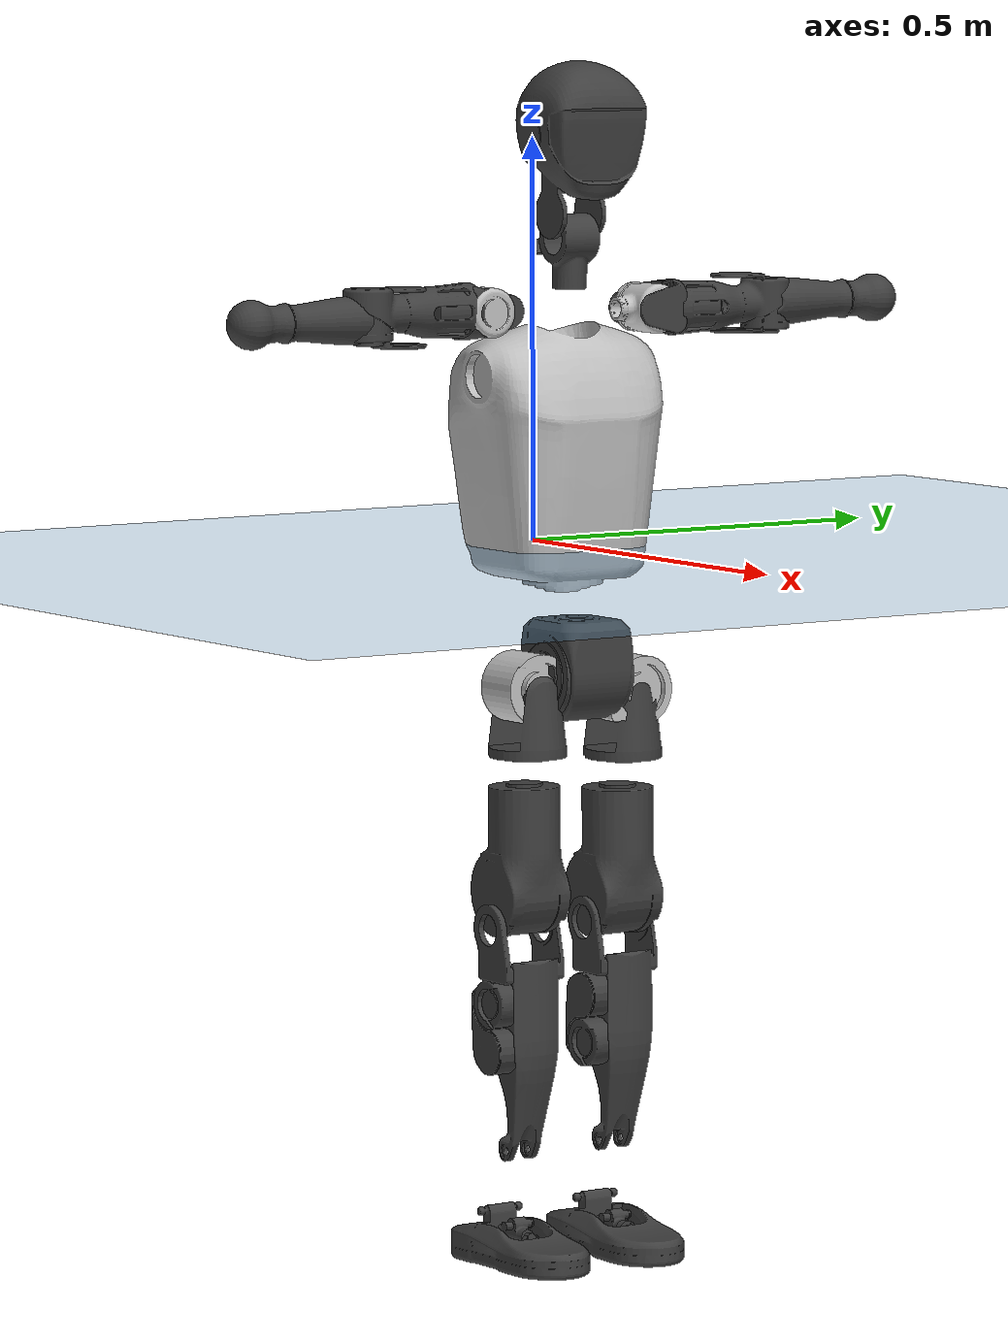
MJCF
<mujoco model="T1">
  <compiler angle="radian" assetdir="assets" balanceinertia="true" inertiafromgeom="false"/>

  <option timestep="0.005" density="1.2" viscosity="2e-05"/>

  <size nkey="1"/>

  <visual>
    <quality shadowsize="8192"/>
    <map shadowclip="0.5"/>
  </visual>

  <default>
    <default class="/">
      <joint armature="0.01" damping="0.01" frictionloss="0.1"/>
      <geom contype="0" conaffinity="0" group="1" solref="-1000 -80"/>
      <site size="0.01 0.005 0.005" group="5"/>
      <general forcelimited="true" biastype="affine" gainprm="25" biasprm="0 -25 -0.6"/>
      <default class="t1">
        <geom rgba="0.25 0.25 0.25 1"/>
        <default class="visual">
          <geom type="mesh" group="2"/>
        </default>
        <default class="collision">
          <geom group="3"/>
        </default>
        <default class="foot">
          <geom size="0.1115 0.05 0.015" type="box" condim="6" group="4" priority="1" solimp="0.015 1 0.015"/>
        </default>
        <default class="reward_collision_sphere">
          <geom group="5" rgba="1 0 0 1"/>
        </default>
      </default>
    </default>
  </default>

  <asset>
    <texture type="skybox" colorspace="auto" name="//unnamed_texture_0" builtin="gradient" rgb1="0.95 0.95 0.95" rgb2="0.95 0.95 0.95" width="100" height="600"/>
    <texture type="2d" colorspace="auto" name="texplane" builtin="checker" rgb1="0.345 0.575 0.748" rgb2="0.345 0.575 0.748" markrgb="1 1 1" width="512" height="512"/>
    <material name="MatPlane" class="/" texture="texplane" texuniform="true" texrepeat="2 2" specular="0.9"/>
    <mesh name="Trunk" class="/" file="Trunk.stl"/>
    <mesh name="H1" class="/" file="H1.stl"/>
    <mesh name="H2" class="/" file="H2.stl"/>
    <mesh name="AL1" class="/" file="AL1.stl"/>
    <mesh name="AL2" class="/" file="AL2.stl"/>
    <mesh name="AL3" class="/" file="AL3.stl"/>
    <mesh name="left_hand_link" class="/" file="left_hand_link.stl"/>
    <mesh name="AR1" class="/" file="AR1.stl"/>
    <mesh name="AR2" class="/" file="AR2.stl"/>
    <mesh name="AR3" class="/" file="AR3.stl"/>
    <mesh name="right_hand_link" class="/" file="right_hand_link.stl"/>
    <mesh name="Waist" class="/" file="Waist.stl"/>
    <mesh name="Hip_Pitch_Left" class="/" file="Hip_Pitch_Left.stl"/>
    <mesh name="Hip_Roll_Left" class="/" file="Hip_Roll_Left.stl"/>
    <mesh name="Hip_Yaw_Left" class="/" file="Hip_Yaw_Left.stl"/>
    <mesh name="Shank_Left" class="/" file="Shank_Left.stl"/>
    <mesh name="Ankle_Cross_Left" class="/" file="Ankle_Cross_Left.stl"/>
    <mesh name="left_foot_link" class="/" file="left_foot_link.stl"/>
    <mesh name="Hip_Pitch_Right" class="/" file="Hip_Pitch_Right.stl"/>
    <mesh name="Hip_Roll_Right" class="/" file="Hip_Roll_Right.stl"/>
    <mesh name="Hip_Yaw_Right" class="/" file="Hip_Yaw_Right.stl"/>
    <mesh name="Shank_Right" class="/" file="Shank_Right.stl"/>
    <mesh name="Ankle_Cross_Right" class="/" file="Ankle_Cross_Right.stl"/>
    <mesh name="right_foot_link" class="/" file="right_foot_link.stl"/>
  </asset>

  <worldbody>
    <geom name="floor" class="/" size="100 100 0.125" type="plane" group="0" material="MatPlane"/>
    <light name="toplight_shadow" class="/" pos="0 0 5" dir="0.0990148 0.0990148 -0.990148" type="directional" ambient="0.04 0.04 0.04" diffuse="0.55 0.55 0.55" specular="0.12 0.12 0.12"/>
    <light name="toplight_fill" class="/" pos="0 0 5" dir="0.0990148 0.0990148 -0.990148" type="directional" castshadow="false" ambient="0.04 0.04 0.04" diffuse="0.3 0.3 0.3" specular="0.08 0.08 0.08"/>
    <body name="trunk" childclass="t1" pos="0.000574524 0.00127898 -0.00512903" quat="1 -2.86865e-06 -1.41386e-06 4.41112e-06">
      <inertial pos="0.0628754 0.00334106 0.14131" quat="0.999939 0.00221591 0.00362804 0.0101466" mass="14.1623" diaginertia="0.227341 0.00991167 0.22771"/>
      <joint name="//unnamed_joint_0" type="free" armature="0" damping="0" frictionloss="0"/>
      <geom name="//unnamed_geom_1" class="visual" rgba="0.76 0.76 0.76 1" mesh="Trunk"/>
      <geom name="//unnamed_geom_2" class="collision" size="0.0797578 0.106344 0.159516" pos="0.0723542 0 0.159039" type="box"/>
      <geom name="//unnamed_geom_3" class="reward_collision_sphere" size="0.122295" pos="0.0723542 0 0.132532"/>
      <geom name="//unnamed_geom_4" class="reward_collision_sphere" size="0.0159516" pos="0.0723542 0.0560221 0"/>
      <geom name="//unnamed_geom_5" class="reward_collision_sphere" size="0.0159516" pos="0.0723542 -0.0560221 0"/>
      <geom name="//unnamed_geom_6" class="reward_collision_sphere" size="0.0159516" pos="0.0723542 0.0705219 0.238558"/>
      <geom name="//unnamed_geom_7" class="reward_collision_sphere" size="0.0159516" pos="0.0723542 -0.0705219 0.238558"/>
      <site name="imu" pos="0.00151432 -0.0335121 0.00556266" size="0.0106344"/>
      <camera name="track" pos="0 -1.31817 0" quat="0.707107 0.707107 0 0" mode="trackcom"/>
      <camera name="ego_camera" pos="0.14712 0 0.556636" quat="-0.5 -0.5 0.5 0.5"/>
      <body name="H1" pos="0.0751356 0.00247079 0.322095" quat="0.999995 -0.00244836 0.00207152 -0.000183056">
        <inertial pos="-0.00291985 -0.00348759 0.0748558" quat="0.763497 -0.0134214 0.00252759 0.645666" mass="0.57966" diaginertia="0.000632902 2.70405e-05 0.000609457"/>
        <joint name="AAHead_yaw" pos="0 0 0" axis="-0.00123172 -0.000864738 0.999999" range="-1.59281 1.40117" armature="0.00963623" damping="0.0277055" frictionloss="0.125427"/>
        <geom name="//unnamed_geom_8" class="visual" mesh="H1"/>
        <body name="H2" pos="-0.000397439 0.00171347 0.0918979" quat="0.999989 -0.000821836 0.00407801 0.00234672">
          <inertial pos="0.010461 -0.00344356 0.125653" quat="0.989287 0.0929569 -0.0691125 -0.0888471" mass="0.755233" diaginertia="0.00512441 0.000227749 0.00734276"/>
          <joint name="Head_pitch" pos="0 0 0" axis="-0.0235291 -0.999695 0.00750383" stiffness="0.0163849" range="-1.20358 0.380426" armature="0.0116126" damping="0.00372477" frictionloss="0.115399"/>
          <geom name="//unnamed_geom_9" class="visual" mesh="H2"/>
          <geom name="//unnamed_geom_10" class="collision" size="0.085075" pos="0.012059 0 0.145786"/>
          <geom name="//unnamed_geom_11" class="reward_collision_sphere" size="0.0957093" pos="0.0241181 0 0.132532"/>
        </body>
      </body>
      <body name="AL1" pos="0.0741164 0.0718595 0.29423" quat="0.999999 -0.000446265 0.00088457 -0.000947983">
        <inertial pos="-0.00101149 0.0325408 0.000363601" quat="0.509605 0.479827 -0.531004 0.477602" mass="0.693209" diaginertia="0.00378368 0.000171894 0.00123759"/>
        <joint name="Left_Shoulder_Pitch" pos="0 0 0" axis="-0.0123029 0.999913 -0.00479779" stiffness="0.0122248" range="-3.46653 1.22886" armature="0.0130958" damping="0.020417" frictionloss="0.115303"/>
        <geom name="//unnamed_geom_12" class="visual" rgba="0.76 0.76 0.76 1" mesh="AL1"/>
        <body name="AL2" pos="0.00443428 0.0316554 -0.000363577" quat="0.999993 0.00237509 -0.00255502 0.00104293">
          <inertial pos="-0.00423619 0.0224075 5.50506e-05" quat="0.4819 0.512633 -0.482389 0.521806" mass="0.204631" diaginertia="0.00109187 4.55552e-05 0.000799765"/>
          <joint name="Left_Shoulder_Roll" pos="0 0 0" axis="-0.999862 -0.00663577 -0.015251" range="-1.55984 1.71847" armature="0.00869289" damping="0" frictionloss="0.0966583"/>
          <geom name="//unnamed_geom_13" class="visual" mesh="AL2"/>
          <body name="AL3" pos="0.00426684 0.0411772 -0.000331788" quat="0.999994 -0.00288142 6.45202e-05 0.00179611">
            <inertial pos="-0.00789216 0.0574932 -0.00228552" quat="0.710505 0.702188 -0.00931174 -0.0450394" mass="1.08546" diaginertia="0.0289664 0.00123829 0.00230384"/>
            <joint name="Left_Elbow_Pitch" pos="0 0 0" axis="0.00169226 -0.999997 0.00198966" range="-2.3137 2.09495" armature="0.00761524" damping="0.0115381" frictionloss="0.0598884"/>
            <geom name="//unnamed_geom_14" class="visual" mesh="AL3"/>
            <geom name="//unnamed_geom_15" class="collision" size="0.0319031 0.0797578" pos="0 0.0329542 0" quat="0.707105 0.707108 0 0" type="cylinder"/>
            <geom name="//unnamed_geom_16" class="reward_collision_sphere" size="0.0382837"/>
            <body name="left_hand_link" pos="0.00367131 0.0957973 0.00228911" quat="0.999991 -0.0020327 0.00107188 0.00356019">
              <inertial pos="-0.00128529 0.0675946 0.00252543" quat="0.707273 0.706932 -0.00346931 0.00110144" mass="0.406056" diaginertia="0.0187577 0.000946604 0.000953611"/>
              <joint name="Left_Elbow_Yaw" pos="0 0 0" axis="-0.0190837 -0.0247095 0.999513" range="-2.39597 -0.172591" armature="0.0134714" damping="0.037727" frictionloss="0.0936499"/>
              <geom name="//unnamed_geom_17" class="visual" mesh="left_hand_link"/>
              <geom name="//unnamed_geom_18" class="collision" size="0.0319031 0.0930507" pos="0 0.0856809 0" quat="0.707105 0.707108 0 0" type="cylinder"/>
              <geom name="//unnamed_geom_19" class="reward_collision_sphere" size="0.0531719"/>
              <geom name="//unnamed_geom_20" class="reward_collision_sphere" size="0.0372203" pos="0 0.0724992 0"/>
              <geom name="//unnamed_geom_21" class="reward_collision_sphere" size="0.0372203" pos="0 0.141703 0"/>
            </body>
          </body>
        </body>
      </body>
      <body name="AR1" pos="0.0677397 -0.0752599 0.297672" quat="1 -6.87037e-05 0.00015423 0.000274038">
        <inertial pos="-0.000866159 -0.0232438 0.00199953" quat="0.505074 0.496017 -0.503776 0.495052" mass="0.61802" diaginertia="0.00342245 0.000165939 0.00117409"/>
        <joint name="Right_Shoulder_Pitch" pos="0 0 0" axis="-0.00858242 -0.998978 -0.0443815" stiffness="0.00884347" range="-1.21816 3.15504" armature="0.0100379" damping="0" frictionloss="0.149603"/>
        <geom name="//unnamed_geom_22" class="visual" rgba="0.76 0.76 0.76 1" mesh="AR1"/>
        <body name="AR2" pos="-0.00932923 -0.0233215 0.000450368" quat="1 3.06022e-05 5.19846e-05 2.6264e-06">
          <inertial pos="-0.000293245 -0.0247993 0.00296533" quat="0.512984 0.4875 -0.510969 0.487956" mass="0.156937" diaginertia="0.000916205 3.99691e-05 0.000636185"/>
          <joint name="Right_Shoulder_Roll" pos="0 0 0" axis="-0.999539 0.0167814 -0.0252885" stiffness="0.0274033" range="-1.712 1.47357" armature="0.00987792" damping="0.0343543" frictionloss="0.0754303"/>
          <geom name="//unnamed_geom_23" class="visual" mesh="AR2"/>
          <body name="AR3" pos="0.00637551 -0.0388713 0.00180319" quat="0.999999 0.000574203 -0.000397016 0.00109289">
            <inertial pos="-0.000843913 -0.0616307 0.00304948" quat="0.707254 0.706918 -0.00483673 0.00597807" mass="1.00162" diaginertia="0.0286383 0.00139328 0.00220552"/>
            <joint name="Right_Elbow_Pitch" pos="0 0 0" axis="0.00364157 0.999966 0.00738594" stiffness="0.0488445" range="-2.1628 2.39564" armature="0.0096208" damping="0" frictionloss="0.105058"/>
            <geom name="//unnamed_geom_24" class="visual" mesh="AR3"/>
            <geom name="//unnamed_geom_25" class="collision" size="0.0319031 0.0797578" pos="0 -0.0329542 0" quat="0.707105 0.707108 0 0" type="cylinder"/>
            <geom name="//unnamed_geom_26" class="reward_collision_sphere" size="0.0382837"/>
            <body name="right_hand_link" pos="-0.0024171 -0.0952732 -0.00575126" quat="1 -0.000185476 0.000145866 8.93834e-05">
              <inertial pos="-0.00194753 -0.0710888 0.00916858" quat="0.696008 0.717934 -0.00561946 0.0105523" mass="0.456894" diaginertia="0.0222557 0.00103649 0.000936991"/>
              <joint name="Right_Elbow_Yaw" pos="0 0 0" axis="-0.0215602 0.0032994 0.999762" range="-0.0173211 2.30902" armature="0.00992774" damping="0.0092428" frictionloss="0.0957204"/>
              <geom name="//unnamed_geom_27" class="visual" mesh="right_hand_link"/>
              <geom name="//unnamed_geom_28" class="collision" size="0.0319031 0.0930507" pos="0 -0.0856809 0" quat="0.707105 0.707108 0 0" type="cylinder"/>
              <geom name="//unnamed_geom_29" class="reward_collision_sphere" size="0.0531719"/>
              <geom name="//unnamed_geom_30" class="reward_collision_sphere" size="0.0372203" pos="0 -0.0724992 0"/>
              <geom name="//unnamed_geom_31" class="reward_collision_sphere" size="0.0372203" pos="0 -0.141703 0"/>
            </body>
          </body>
        </body>
      </body>
      <body name="Waist" pos="0.0854348 0.00624272 -0.152069" quat="0.999997 0.00187819 -0.00177849 0.00028423">
        <inertial pos="0.00560792 0.00527951 0.0114919" quat="0.98362 -0.000125862 -0.180249 0.00150713" mass="3.25559" diaginertia="0.0149746 0.000740937 0.0219103"/>
        <joint name="Waist" pos="0 0 0" axis="-0.0163131 -0.00717604 0.999841" range="-1.60158 1.54337" armature="0.0106095" damping="0.0115677" frictionloss="0.148508"/>
        <geom name="//unnamed_geom_32" class="visual" mesh="Waist"/>
        <body name="Hip_Pitch_Left" pos="-0.000822752 0.077398 -0.00554905" quat="0.999996 0.00103944 0.0024629 -0.0011031">
          <inertial pos="0.00333025 -0.00565563 -0.0239218" quat="0.975286 0.220407 0.00985525 0.0118668" mass="1.2332" diaginertia="0.00465847 0.000165765 0.00537646"/>
          <joint name="Left_Hip_Pitch" pos="0 0 0" axis="0.00578074 0.999983 -0.000659138" stiffness="0.0374512" range="-1.83957 1.56966" armature="0.0104684" damping="0.0186639" frictionloss="0.10144"/>
          <geom name="//unnamed_geom_33" class="visual" rgba="0.76 0.76 0.76 1" mesh="Hip_Pitch_Left"/>
          <body name="Hip_Roll_Left" pos="-0.00693722 -0.00228812 -0.0295663" quat="0.999989 -0.000420697 0.00454735 -0.00132847">
            <inertial pos="0.00886255 0.00575751 -0.0708583" quat="0.677508 -0.0256382 -0.00915842 0.735012" mass="0.48211" diaginertia="0.00486461 0.000195449 0.00214237"/>
            <joint name="Left_Hip_Roll" pos="0 0 0" axis="-0.998887 0.0127557 0.0454089" range="-1.47129 0.0527012" armature="0.00716947" damping="0.0141776" frictionloss="0.0956485"/>
            <geom name="//unnamed_geom_34" class="visual" mesh="Hip_Roll_Left"/>
            <geom name="//unnamed_geom_35" class="reward_collision_sphere" size="0.058489"/>
            <body name="Hip_Yaw_Left" pos="-0.00991869 -0.00221924 -0.114828" quat="0.999992 0.00225167 -0.00291715 -0.00135466">
              <inertial pos="-0.00705266 -0.00255194 -0.115919" quat="0.69369 -0.028737 -0.0288427 0.719122" mass="2.51886" diaginertia="0.0685348 0.00313921 0.00982529"/>
              <joint name="Left_Hip_Yaw" pos="0 0 0" axis="-0.00153181 0.0106828 -0.999942" range="-0.993685 1.16733" armature="0.011491" damping="0" frictionloss="0.0958142"/>
              <geom name="//unnamed_geom_36" class="visual" mesh="Hip_Yaw_Left"/>
              <geom name="//unnamed_geom_37" class="collision" size="0.0531719 0.085075" type="cylinder"/>
              <body name="Shank_Left" pos="-0.0180022 0.000419507 -0.169079" quat="0.999999 0.000779046 0.000705419 0.000600331">
                <inertial pos="-0.0131256 0.00677867 -0.163131" quat="0.997191 0.000336726 -0.0277742 0.06956" mass="2.15111" diaginertia="0.08952 0.0045549 0.00778452"/>
                <joint name="Left_Knee_Pitch" pos="0 0 0" axis="-0.0232017 0.999704 -0.00733681" range="-0.0570912 2.31157" armature="0.011512" damping="3.1446e-05" frictionloss="0.116523"/>
                <geom name="//unnamed_geom_38" class="visual" mesh="Shank_Left"/>
                <geom name="//unnamed_geom_39" class="collision" size="0.0531719 0.0797578" pos="0 0 -0.159039" type="cylinder"/>
                <geom name="//unnamed_geom_40" class="reward_collision_sphere" size="0.0691234"/>
                <body name="Ankle_Cross_Left" pos="0.00136193 0.0034161 -0.379157" quat="0.999999 -0.0005455 0.000918253 -0.00075002">
                  <inertial pos="-0.00914317 -0.000195848 -0.00808396" quat="0.449377 0.546566 0.550306 0.443272" mass="0.0803715" diaginertia="7.26275e-05 3.26289e-06 4.64523e-05"/>
                  <joint name="Left_Ankle_Pitch" pos="0 0 0" axis="-0.00558226 0.999959 -0.00708193" range="-0.870582 0.344283" armature="0.011494" damping="0" frictionloss="0.130567"/>
                  <geom name="//unnamed_geom_41" class="visual" mesh="Ankle_Cross_Left"/>
                  <body name="left_foot_link" pos="0.000808152 -0.00250716 -0.0122014" quat="1 -3.65495e-05 0.000330524 -1.58696e-05">
                    <inertial pos="-0.000897774 -0.00563445 -0.0135815" quat="0.00596485 0.622304 0.0172533 0.782563" mass="0.90412" diaginertia="0.00606629 0.00028736 0.00875316"/>
                    <joint name="Left_Ankle_Roll" pos="0 0 0" axis="-0.999864 -0.0050987 -0.0156962" range="-0.435367 0.281434" armature="0.00627013" damping="0.0101203" frictionloss="0.103461"/>
                    <geom name="//unnamed_geom_42" class="visual" mesh="left_foot_link"/>
                    <geom name="left_foot" class="foot" size="0.102117 0.0614454 0.0158305" pos="0.012059 0 -0.0198799"/>
                    <geom name="//unnamed_geom_44" class="reward_collision_sphere" size="0.0552987" pos="0.012059 0 -0.0198799"/>
                    <geom name="//unnamed_geom_45" class="reward_collision_sphere" size="0.0319031" pos="0.114561 -0.0151589 -0.0198799"/>
                    <geom name="//unnamed_geom_46" class="reward_collision_sphere" size="0.0319031" pos="-0.0844132 -0.0151589 -0.0198799"/>
                    <site name="left_foot" class="foot" pos="0.012059 0 -0.0198799" size="0.0106344"/>
                  </body>
                </body>
              </body>
            </body>
          </body>
        </body>
        <body name="Hip_Pitch_Right" pos="-0.00627091 -0.0712535 0.00519665" quat="0.999999 -0.000942314 -0.000826866 -0.000684295">
          <inertial pos="0.00747497 0.00587046 -0.0237236" quat="0.975695 -0.218661 0.00846712 -0.0115743" mass="1.27622" diaginertia="0.00464882 0.000186183 0.00521136"/>
          <joint name="Right_Hip_Pitch" pos="0 0 0" axis="0.000430021 -0.999999 0.00134646" stiffness="0.00937994" range="-1.55021 1.85746" armature="0.00557919" damping="0.00163138" frictionloss="0.117562"/>
          <geom name="//unnamed_geom_47" class="visual" rgba="0.76 0.76 0.76 1" mesh="Hip_Pitch_Right"/>
          <body name="Hip_Roll_Right" pos="-0.000178159 0.0028407 -0.0286891" quat="0.999999 0.000664954 0.000906235 -0.000212065">
            <inertial pos="0.002841 0.00798333 -0.0662804" quat="0.694732 0.00486836 0.0232407 0.718877" mass="0.528437" diaginertia="0.00509817 0.000216655 0.00234663"/>
            <joint name="Right_Hip_Roll" pos="0 0 0" axis="-0.999915 -0.00881533 0.00962911" range="-0.23932 1.57489" armature="0.00993195" damping="0.0130291" frictionloss="0.134423"/>
            <geom name="//unnamed_geom_48" class="visual" mesh="Hip_Roll_Right"/>
            <geom name="//unnamed_geom_49" class="reward_collision_sphere" size="0.058489"/>
            <body name="Hip_Yaw_Right" pos="-0.00589945 -0.00274589 -0.113406" quat="0.999997 0.00187915 0.000361644 0.00148501">
              <inertial pos="-0.00810588 0.00933736 -0.11997" quat="0.712925 -0.0298605 -0.0357897 0.69969" mass="2.81871" diaginertia="0.0731553 0.00351625 0.0118384"/>
              <joint name="Right_Hip_Yaw" pos="0 0 0" axis="0.0147425 -0.00277988 -0.999887" range="-0.950026 0.881831" armature="0.0101279" damping="0.00384891" frictionloss="0.1069"/>
              <geom name="//unnamed_geom_50" class="visual" mesh="Hip_Yaw_Right"/>
              <geom name="//unnamed_geom_51" class="collision" size="0.0531719 0.085075" type="cylinder"/>
              <body name="Shank_Right" pos="-0.0155911 -0.00259838 -0.178359" quat="1 0.000392463 -0.000485188 -0.000471025">
                <inertial pos="-0.00863933 -0.00018347 -0.161074" quat="0.999331 -0.000459292 -0.0260408 -0.0256604" mass="2.25579" diaginertia="0.108086 0.00469811 0.00862878"/>
                <joint name="Right_Knee_Pitch" pos="0 0 0" axis="-0.00165707 -0.999611 0.0278313" stiffness="0.0319726" range="-2.38595 -0.0287761" armature="0.0105701" damping="0.0106098" frictionloss="0.115675"/>
                <geom name="//unnamed_geom_52" class="visual" mesh="Shank_Right"/>
                <geom name="//unnamed_geom_53" class="collision" size="0.0531719 0.0797578" pos="0 0 -0.159039" type="cylinder"/>
                <geom name="//unnamed_geom_54" class="reward_collision_sphere" size="0.0691234"/>
                <body name="Ankle_Cross_Right" pos="0.000326843 -0.0025275 -0.373972" quat="0.999996 -0.000411387 -0.00032357 0.00288267">
                  <inertial pos="-0.00520991 0.00150139 -0.00274289" quat="0.417979 0.580122 0.552199 0.428752" mass="0.0934322" diaginertia="8.96521e-05 3.23115e-06 5.56179e-05"/>
                  <joint name="Right_Ankle_Pitch" pos="0 0 0" axis="0.0144098 -0.99956 -0.025936" stiffness="0.0290324" range="-0.438887 0.853503" armature="0.0104629" damping="0.0301565" frictionloss="0.136285"/>
                  <geom name="//unnamed_geom_55" class="visual" mesh="Ankle_Cross_Right"/>
                  <body name="right_foot_link" pos="-0.00131878 0.00190197 -0.0193667" quat="1 -0.000127868 7.07444e-06 -0.000491385">
                    <inertial pos="0.00925048 0.00450347 -0.01232" quat="0.00970426 0.628498 0.0175661 0.777552" mass="0.815997" diaginertia="0.00678789 0.000295555 0.00936472"/>
                    <joint name="Right_Ankle_Roll" pos="0 0 0" axis="-0.999999 -0.00070462 0.00130875" range="-0.460741 0.480776" armature="0.00946099" damping="0" frictionloss="0.115768"/>
                    <geom name="//unnamed_geom_56" class="visual" mesh="right_foot_link"/>
                    <geom name="right_foot" class="foot" size="0.0966484 0.047396 0.0151465" pos="0.012059 0 -0.0198799"/>
                    <geom name="//unnamed_geom_58" class="reward_collision_sphere" size="0.0425375"/>
                    <geom name="//unnamed_geom_59" class="reward_collision_sphere" size="0.0319031" pos="0.012059 0 -0.0198799"/>
                    <geom name="//unnamed_geom_60" class="reward_collision_sphere" size="0.0319031" pos="0.114561 0.0151589 -0.0198799"/>
                    <geom name="//unnamed_geom_61" class="reward_collision_sphere" size="0.0319031" pos="-0.0844132 0.0151589 -0.0198799"/>
                    <site name="right_foot" class="foot" pos="0.012059 0 -0.0198799" size="0.0106344"/>
                  </body>
                </body>
              </body>
            </body>
          </body>
        </body>
      </body>
    </body>
  </worldbody>

  <contact>
    <pair class="/" geom1="floor" geom2="left_foot" name="//unnamed_contact_0"/>
    <pair class="/" geom1="floor" geom2="right_foot" name="//unnamed_contact_1"/>
  </contact>

  <actuator>
    <general name="AAHead_yaw" class="/" joint="AAHead_yaw" forcerange="-6.26444 6.26444" gainprm="27.5575" biasprm="0 -27.5575 -0.689139"/>
    <general name="Head_pitch" class="/" joint="Head_pitch" forcerange="-6.1285 6.1285" gainprm="27.5575" biasprm="0 -27.5575 -0.689139"/>
    <general name="Left_Shoulder_Pitch" class="/" joint="Left_Shoulder_Pitch" forcerange="-19.8017 19.8017" gainprm="27.5575" biasprm="0 -27.5575 -0.689139"/>
    <general name="Left_Shoulder_Roll" class="/" joint="Left_Shoulder_Roll" forcerange="-20.0226 20.0226" gainprm="27.5575" biasprm="0 -27.5575 -0.689139"/>
    <general name="Left_Elbow_Pitch" class="/" joint="Left_Elbow_Pitch" forcerange="-13.7896 13.7896" gainprm="27.5575" biasprm="0 -27.5575 -0.689139"/>
    <general name="Left_Elbow_Yaw" class="/" joint="Left_Elbow_Yaw" forcerange="-21.9767 21.9767" gainprm="27.5575" biasprm="0 -27.5575 -0.689139"/>
    <general name="Right_Shoulder_Pitch" class="/" joint="Right_Shoulder_Pitch" forcerange="-25.2671 25.2671" gainprm="27.5575" biasprm="0 -27.5575 -0.689139"/>
    <general name="Right_Shoulder_Roll" class="/" joint="Right_Shoulder_Roll" forcerange="-17.8579 17.8579" gainprm="27.5575" biasprm="0 -27.5575 -0.689139"/>
    <general name="Right_Elbow_Pitch" class="/" joint="Right_Elbow_Pitch" forcerange="-13.5516 13.5516" gainprm="27.5575" biasprm="0 -27.5575 -0.689139"/>
    <general name="Right_Elbow_Yaw" class="/" joint="Right_Elbow_Yaw" forcerange="-18.3184 18.3184" gainprm="27.5575" biasprm="0 -27.5575 -0.689139"/>
    <general name="Waist" class="/" joint="Waist" forcerange="-31.2461 31.2461" gainprm="27.5575" biasprm="0 -27.5575 -0.689139"/>
    <general name="Left_Hip_Pitch" class="/" joint="Left_Hip_Pitch" forcerange="-48.9021 48.9021" gainprm="27.5575" biasprm="0 -27.5575 -0.689139"/>
    <general name="Left_Hip_Roll" class="/" joint="Left_Hip_Roll" forcerange="-23.4898 23.4898" gainprm="27.5575" biasprm="0 -27.5575 -0.689139"/>
    <general name="Left_Hip_Yaw" class="/" joint="Left_Hip_Yaw" forcerange="-42.8385 42.8385" gainprm="27.5575" biasprm="0 -27.5575 -0.689139"/>
    <general name="Left_Knee_Pitch" class="/" joint="Left_Knee_Pitch" forcerange="-51.0985 51.0985" gainprm="27.5575" biasprm="0 -27.5575 -0.689139"/>
    <general name="Left_Ankle_Pitch" class="/" joint="Left_Ankle_Pitch" forcerange="-29.3688 29.3688" gainprm="27.5575" biasprm="0 -27.5575 -0.689139"/>
    <general name="Left_Ankle_Roll" class="/" joint="Left_Ankle_Roll" forcerange="-14.7346 14.7346" gainprm="27.5575" biasprm="0 -27.5575 -0.689139"/>
    <general name="Right_Hip_Pitch" class="/" joint="Right_Hip_Pitch" forcerange="-46.5018 46.5018" gainprm="27.5575" biasprm="0 -27.5575 -0.689139"/>
    <general name="Right_Hip_Roll" class="/" joint="Right_Hip_Roll" forcerange="-35.3484 35.3484" gainprm="27.5575" biasprm="0 -27.5575 -0.689139"/>
    <general name="Right_Hip_Yaw" class="/" joint="Right_Hip_Yaw" forcerange="-35.3075 35.3075" gainprm="27.5575" biasprm="0 -27.5575 -0.689139"/>
    <general name="Right_Knee_Pitch" class="/" joint="Right_Knee_Pitch" forcerange="-48.7671 48.7671" gainprm="27.5575" biasprm="0 -27.5575 -0.689139"/>
    <general name="Right_Ankle_Pitch" class="/" joint="Right_Ankle_Pitch" forcerange="-18.6765 18.6765" gainprm="27.5575" biasprm="0 -27.5575 -0.689139"/>
    <general name="Right_Ankle_Roll" class="/" joint="Right_Ankle_Roll" forcerange="-20.6572 20.6572" gainprm="27.5575" biasprm="0 -27.5575 -0.689139"/>
  </actuator>

  <sensor>
    <gyro site="imu" name="imu_angular_velocity"/>
    <velocimeter site="imu" name="imu_linear_velocity"/>
    <framelinvel objtype="site" objname="left_foot" name="left_foot_global_linear_velocity"/>
    <framelinvel objtype="site" objname="right_foot" name="right_foot_global_linear_velocity"/>
  </sensor>

  <keyframe>
    <key name="home" qpos="0 0 0.6385 1 0 0 0 0 0 0 1.4 0 -0.4 0 -1.4 0 0.4 0 -0.4 0 0 0.8 -0.4 0 0.4 0 0 -0.8 0.4 0"/>
  </keyframe>
</mujoco>
